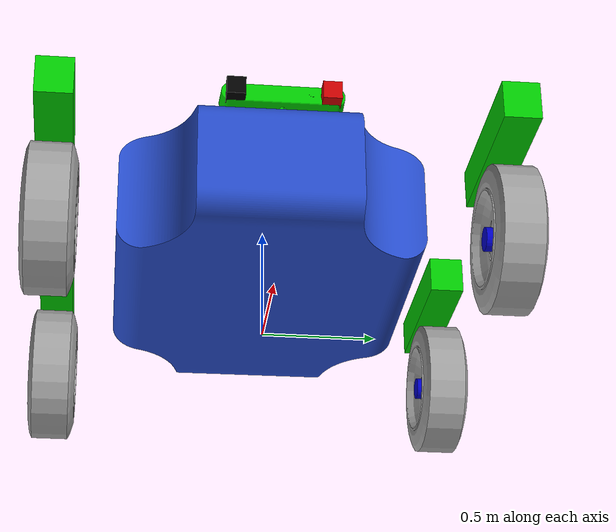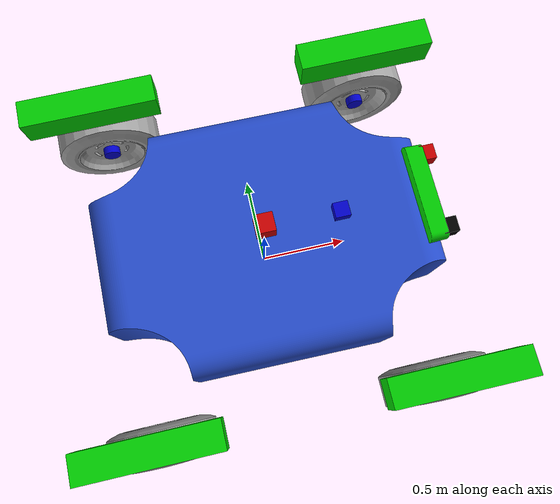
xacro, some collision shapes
<?xml version="1.0"?>
<robot name="csi_rover" xmlns:xacro="http://www.ros.org/wiki/xacro">

    <!-- ==============================================
            include other urdf files here
    ================================================ -->

    <xacro:include filename="$(find csi_rover_description)/urdf/csi_rover.gazebo" />
    <xacro:include filename="$(find csi_rover_description)/urdf/macros.xacro" />
    <xacro:include filename="$(find csi_rover_description)/urdf/materials.xacro" />

    <!-- ==============================================
            define parameters here
    ================================================ -->
    <xacro:property name="TOTAL_length" value="2.2860"/>
    <xacro:property name="TOTAL_width" value="2.2098"/>
    <xacro:property name="TOTAL_height" value="0.9490"/>

    <xacro:property name="wheel_separation_length" value="1.5748"/>
    <xacro:property name="wheel_separation_width" value="1.87325"/>

    <xacro:property name="steering_torque" value="10.000"/>
    <xacro:property name="steering_speed" value="15.000"/>

    <xacro:property name="PI_div_2" value="1.5707"/>

    <xacro:property name="wheel_radius" value="0.275"/>
    <xacro:property name="wheel_width" value="${(TOTAL_width-wheel_separation_width)/2}"/>
    <xacro:property name="wheel_mass" value="2"/>

    <xacro:property name="chassis_length" value="1.5"/>
    <xacro:property name="chassis_width" value="1.25"/>
    <xacro:property name="chassis_height" value="${wheel_width}"/>
    <xacro:property name="chassis_mass" value="8"/>

    <xacro:property name="cameraSize" value="0.08"/>
    <xacro:property name="cameraMass" value="0.1"/>

    <xacro:property name="axle_eff_limit" value="100.00"/>
    <xacro:property name="axle_vel_limit" value="${wheel_radius*2*2*PI_div_2*1.5}"/>

    <!-- ==============================================
            robot body
    ================================================ -->

    <link name="chassis">
        <gravity>on</gravity>
        <collision name="collision">
            <xacro:chassis_origin/>
            <geometry>
                <box size="${chassis_length/2} ${chassis_width/2} ${chassis_height}"/>
            </geometry>
        </collision>
        <visual name="visual">
            <xacro:chassis_origin/>
            <geometry>
                <mesh filename="package://csi_rover_description/meshes/robot_body.dae" scale="0.15 0.15 0.15"/>
            </geometry>
        </visual>
        <inertial>
            <xacro:chassis_origin/>
            <box size="${chassis_length} ${chassis_width} ${chassis_height}"/>
            <xacro:solid_cube_inertia/>
        </inertial>
    </link>

    <!-- ==============================================
            sensor links and joints
    ================================================ -->

    <!-- Camera sensor (stereo) -->
    <link name="main_camera_link">
        <collision>
            <origin xyz="0 0 0" rpy="0 0 0"/>
            <geometry>
                <box size="${cameraSize} ${cameraSize} ${cameraSize}"/>
            </geometry>
        </collision>

        <visual>
            <origin xyz="0 0 0" rpy="0 0 0"/>
            <geometry>
                <mesh filename="package://csi_rover_description/meshes/camera.dae" scale="0.006 0.006 0.006"/>
            </geometry>
            <material name="green"/>
        </visual>

        <inertial>
            <mass value="${cameraMass}" />
            <origin xyz="0 0 0" rpy="0 0 0"/>
            <box_inertia m="${cameraMass}" x="${cameraSize}" y="${cameraSize}" z="${cameraSize}" />
            <inertia ixx="1e-6" ixy="0" ixz="0" iyy="1e-6" iyz="0" izz="1e-6" />
        </inertial>
    </link>

    <link name="left_camera_link">
        <collision>
            <origin xyz="0 0 0" rpy="0 0 0"/>
            <geometry>
                <box size="${cameraSize} ${cameraSize} ${cameraSize}"/>
            </geometry>
        </collision>

        <visual>
            <origin xyz="0 0 0" rpy="0 0 0"/>
            <geometry>
                <box size="${cameraSize} ${cameraSize} ${cameraSize}"/>
            </geometry>
            <material name="red"/>
        </visual>

        <inertial>
            <mass value="${cameraMass}" />
            <origin xyz="0 0 0" rpy="0 0 0"/>
            <box_inertia m="${cameraMass}" x="${cameraSize}" y="${cameraSize}" z="${cameraSize}" />
            <inertia ixx="1e-6" ixy="0" ixz="0" iyy="1e-6" iyz="0" izz="1e-6" />
        </inertial>
    </link>

    <link name="right_camera_link">
        <collision>
            <origin xyz="0 0 0" rpy="0 0 0"/>
            <geometry>
                <box size="${cameraSize} ${cameraSize} ${cameraSize}"/>
            </geometry>
        </collision>

        <visual>
            <origin xyz="0 0 0" rpy="0 0 0"/>
            <geometry>
                <box size="${cameraSize} ${cameraSize} ${cameraSize}"/>
            </geometry>
            <material name="black"/>
        </visual>

        <inertial>
            <mass value="${cameraMass}" />
            <origin xyz="0 0 0" rpy="0 0 0"/>
            <box_inertia m="${cameraMass}" x="${cameraSize}" y="${cameraSize}" z="${cameraSize}" />
            <inertia ixx="1e-6" ixy="0" ixz="0" iyy="1e-6" iyz="0" izz="1e-6" />
        </inertial>
    </link>

    <joint name="main_camera_joint" type="fixed">
        <axis xyz="0 1 0" />
        <origin xyz="${chassis_length / 2 + 0.1} 0 ${wheel_radius * 5 / 2}" rpy="0 0 0"/>
        <parent link="chassis"/>
        <child link="main_camera_link"/>
    </joint>

    <joint name="left_camera_joint" type="fixed">
        <axis xyz="0 1 0" />
        <origin xyz="+0.06 +0.2 0" rpy="0 0 0"/>
        <parent link="main_camera_link"/>
        <child link="left_camera_link"/>
    </joint>

    <joint name="right_camera_joint" type="fixed">
        <axis xyz="0 1 0" />
        <origin xyz="+0.06 -0.2 0" rpy="0 0 0"/>
        <parent link="main_camera_link"/>
        <child link="right_camera_link"/>
    </joint>

    <!-- IMU sensor -->
    <link name="imu_link">
        <collision>
            <origin xyz="0 0 ${wheel_radius * 5 / 2}" rpy="0 0 0"/>
            <geometry>
                <box size="${cameraSize} ${cameraSize} ${cameraSize}"/>
            </geometry>
        </collision>

        <visual>
            <origin xyz="0 0 ${wheel_radius * 5 / 2}" rpy="0 0 0"/>
            <geometry>
                <box size="${cameraSize} ${cameraSize} ${cameraSize}"/>
            </geometry>
            <material name="blue"/>
        </visual>

        <inertial>
            <mass value="${cameraMass}" />
            <origin xyz="0 0 ${wheel_radius * 5 / 2}" rpy="0 0 0"/>
            <box_inertia m="${cameraMass}" x="${cameraSize}" y="${cameraSize}" z="${cameraSize}" />
            <inertia ixx="1e-6" ixy="0" ixz="0" iyy="1e-6" iyz="0" izz="1e-6" />
        </inertial>
    </link>

    <joint name="imu_joint" type="fixed">
        <axis xyz="0 1 0" />
        <origin xyz=".4 0 0" rpy="0 0 0"/>
        <parent link="chassis"/>
        <child link="imu_link"/>
    </joint>

    <!-- Hokuyo Laser -->
    <link name="lidar_link">
        <collision>
            <origin xyz="0 0 0" rpy="0 0 0"/>
            <geometry>
                <box size="0.1 0.1 0.1"/>
            </geometry>
        </collision>

        <visual>
            <origin xyz="0 0 0" rpy="0 0 0"/>
            <geometry>
                <mesh filename="package://csi_rover_description/meshes/hokuyo.dae" scale="2 2 2"/>
            </geometry>
            <material name="red" />
        </visual>

        <inertial>
            <mass value="1e-5" />
            <origin xyz="0 0 0" rpy="0 0 0"/>
            <inertia ixx="1e-6" ixy="0" ixz="0" iyy="1e-6" iyz="0" izz="1e-6" />
        </inertial>
    </link>

    <joint name="lidar_joint" type="fixed">
        <axis xyz="0 1 0" />
        <origin xyz="0 0 ${wheel_radius * 5 / 2 + 0.05}" rpy="0 0 0"/>
        <parent link="chassis"/>
        <child link="lidar_link"/>
    </joint>

    <xacro:wheel lr_prefix="left"  fr_prefix="front"  lr_reflect="1"   fr_reflect="1"/>
    <xacro:wheel lr_prefix="left"  fr_prefix="rear"   lr_reflect="-1"   fr_reflect="1"/>
    <xacro:wheel lr_prefix="right" fr_prefix="front"  lr_reflect="1"  fr_reflect="-1"/>
    <xacro:wheel lr_prefix="right" fr_prefix="rear"   lr_reflect="-1"  fr_reflect="-1"/>

</robot>

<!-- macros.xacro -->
<robot>

    <macro name="chassis_origin">
        <origin xyz="0 0 ${wheel_radius * 3 / 2}" rpy="0 0 0"/>
    </macro>

    <macro name="null_inertial">
        <inertial>
            <mass value="0.001"/>
            <inertia ixx="0.001" ixy="0" ixz="0" iyy="0.001" iyz="0" izz="0.0001"/>
        </inertial>
    </macro>

    <macro name="solid_cube_inertia">
        <mass value="${chassis_mass}"/>
        <inertia ixx="${chassis_mass * (wheel_width * wheel_width + chassis_height * chassis_height) / 12}"
                 ixy="0" ixz="0"
                 iyy="${chassis_mass * (wheel_width * wheel_width + chassis_height * chassis_height) / 12}"
                 iyz="0"
                 izz="${chassis_mass * (wheel_width * wheel_width + wheel_width * wheel_width) / 12}"/>
    </macro>

    <!-- Steering Transmission -->
    <macro name="steering_transmission" params="lr_prefix fr_prefix lr_reflect fr_reflect ">

        <joint name="${lr_prefix}_${fr_prefix}_to_chassis" type="fixed">
            <parent link="chassis"/>
            <child link="${lr_prefix}_${fr_prefix}_steering_link"/>
            <origin xyz="${lr_reflect*(wheel_separation_length/2)} ${fr_reflect*(wheel_separation_width/2)} ${wheel_radius*2}"/>
        </joint>

        <!-- SHOULD TURN WHEELS TO MOVE FOREWARD OR BACKWARD -->
        <joint name="${lr_prefix}_${fr_prefix}_axle" type="continuous">
            <parent link="${lr_prefix}_${fr_prefix}_axle_link"/>
            <child link="${lr_prefix}_${fr_prefix}_wheel"/>
            <origin rpy="0 0 0"/>
            <axis xyz="0 1 0"/>
            <limit effort="${axle_eff_limit}" velocity="${axle_vel_limit}" />
        </joint>

        <!-- STEER LEFT OR RIGHT -->
        <joint name="${lr_prefix}_${fr_prefix}_steering_joint" type="revolute">
            <parent link="${lr_prefix}_${fr_prefix}_steering_link"/>
            <child link="${lr_prefix}_${fr_prefix}_axle_link"/>
            <origin xyz="0 0 ${-wheel_radius - chassis_height}" />
            <axis xyz="0 0 1"/>
            <limit lower="${-PI_div_2}" upper="${PI_div_2}"
                   effort="${steering_torque}" velocity="${steering_speed}"/>
        </joint>

        <transmission name="${lr_prefix}_${fr_prefix}_axle_trans">

            <type>transmission_interface/SimpleTransmission</type>
            <joint name="${lr_prefix}_${fr_prefix}_axle">
                <hardwareInterface>hardware_interface/EffortJointInterface</hardwareInterface>
            </joint>

            <actuator name="${lr_prefix}_${fr_prefix}_axle_act">
                <hardwareInterface>hardware_interface/EffortJointInterface</hardwareInterface>
                <mechanicalReduction>1</mechanicalReduction>
            </actuator>

        </transmission>

        <link name="${lr_prefix}_${fr_prefix}_axle_link">

            <null_inertial/>

            <visual name="visual">
                <origin xyz="0 0 0 " rpy="0 1.5707 1.5707" />
                <geometry>
                    <cylinder length="0.20" radius="0.05"/>
                </geometry>
                <material name="blue" />
            </visual>
        </link>

        <!-- Steering Link -->
        <link name="${lr_prefix}_${fr_prefix}_steering_link">

            <null_inertial/>

            <visual name="visual">
                <geometry>
                    <box size="${chassis_length/2} ${chassis_width/8} ${chassis_height}"/>
                </geometry>
                <material name="green" />
            </visual>

        </link>

        <!--AT TOP OF WHEEL-->

        <transmission name="${lr_prefix}_${fr_prefix}_steering_trans">
            <type>transmission_interface/SimpleTransmission</type>
            <joint name="${lr_prefix}_${fr_prefix}_steering_joint">
                <hardwareInterface>hardware_interface/EffortJointInterface</hardwareInterface>
            </joint>
            <actuator name="${lr_prefix}_${fr_prefix}_steering_act">
                <hardwareInterface>hardware_interface/EffortJointInterface</hardwareInterface>
                <mechanicalReduction>1</mechanicalReduction>
            </actuator>
        </transmission>

    </macro>

    <!-- Wheel -->
    <macro name="wheel" params="lr_prefix fr_prefix lr_reflect fr_reflect">

        <link name="${lr_prefix}_${fr_prefix}_wheel">
            <visual>
                <origin xyz="0 0 0" rpy="${PI_div_2} 0 0"/>
                <geometry>
                    <mesh filename="package://csi_rover_description/meshes/wheel.dae" scale="0.12 0.12 0.12"/>
                </geometry>
            </visual>

            <collision>
                <origin xyz="0 0 0" rpy="${PI_div_2} 0 0"/>
                <geometry>
                    <cylinder radius="${wheel_radius}" length="${wheel_width}"/>
                </geometry>
            </collision>

            <inertial>
                <origin xyz="0 0 0" rpy="${PI_div_2} 0 0"/>
                <mass value="${wheel_mass}"/>
                <inertia ixx="0.4" ixy="0.0" ixz="0.0" iyy="0.4" iyz="0.0" izz="0.2"/>
            </inertial>
        </link>

        <steering_transmission lr_prefix="${lr_prefix}" fr_prefix="${fr_prefix}"
                               lr_reflect="${lr_reflect}" fr_reflect="${fr_reflect}"/>

    </macro>

</robot>

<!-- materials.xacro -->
<robot>

    <material name="black">
        <color rgba="0.0 0.0 0.0 1.0"/>
    </material>

    <material name="blue">
        <color rgba="0.0 0.0 0.8 1.0"/>
    </material>

    <material name="green">
        <color rgba="0.0 0.8 0.0 1.0"/>
    </material>

    <material name="grey">
        <color rgba="0.2 0.2 0.2 1.0"/>
    </material>

    <material name="orange">
        <color rgba="${255/255} ${108/255} ${10/255} 1.0"/>
    </material>

    <material name="brown">
        <color rgba="${222/255} ${207/255} ${195/255} 1.0"/>
    </material>

    <material name="red">
        <color rgba="0.8 0.0 0.0 1.0"/>
    </material>

    <material name="white">
        <color rgba="1.0 1.0 1.0 1.0"/>
    </material>

</robot>
